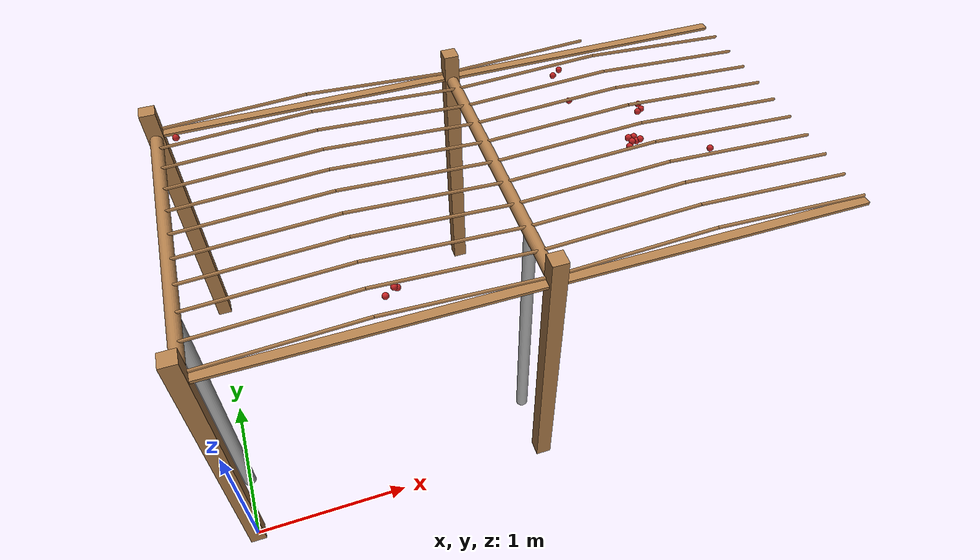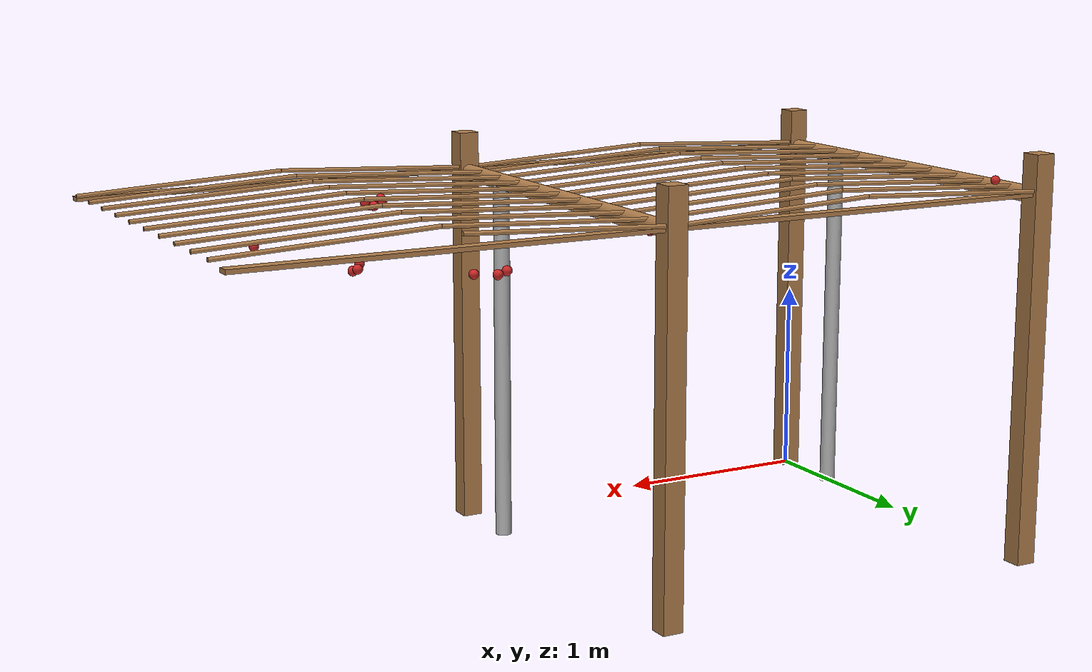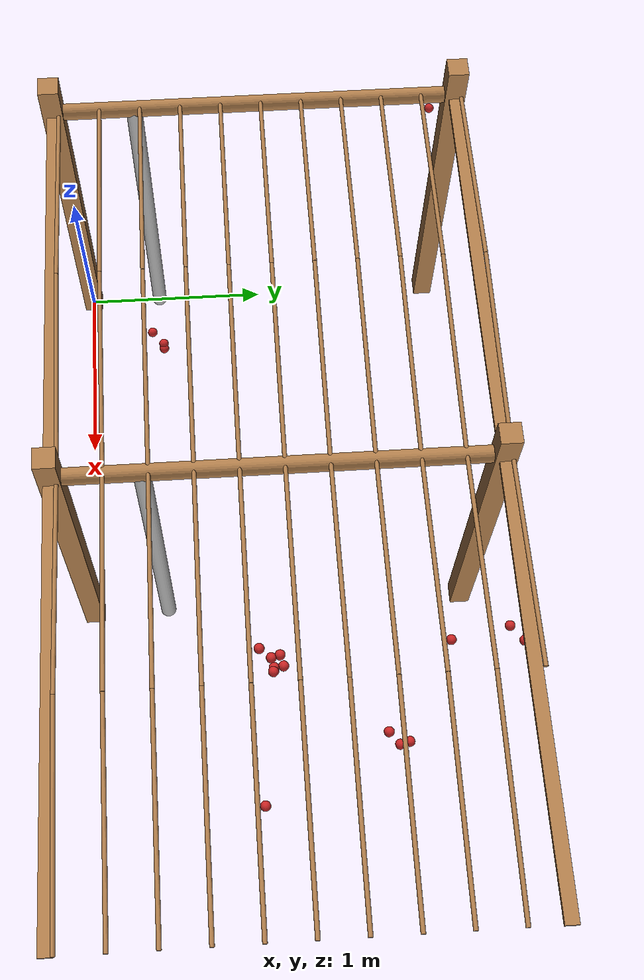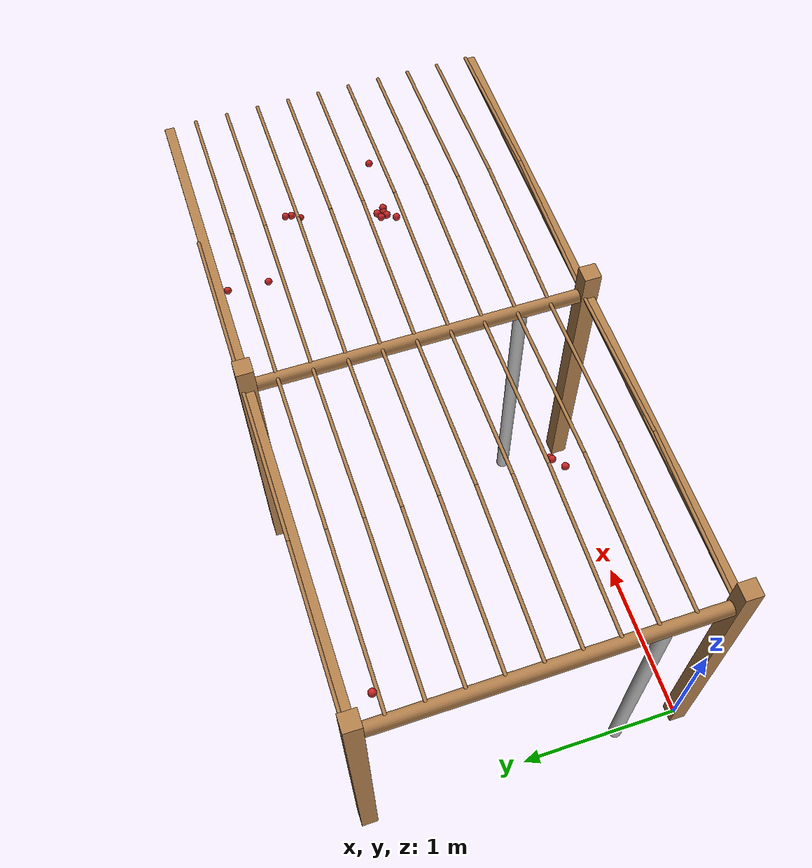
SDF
<sdf version="1.4">
 <model name="pergola">
  <include><name>post_0</name><uri>model://post</uri></include>
  <include><name>post_1</name><pose>0.0 2.0 0 0 0 0</pose><uri>model://post</uri></include>
  <include><name>post_11</name><pose>2.0 0.0 0 0 0 0</pose><uri>model://post</uri></include>
  <include><name>post_12</name><pose>2.0 2.0 0 0 0 0</pose><uri>model://post</uri></include>
  <link name="beam_0">
   <pose>1.0 0.0 1.81 0 0 0</pose>
   <collision name="collision"><geometry><box><size>2.0 0.06 0.02</size></box></geometry></collision>
   <visual name="visual">
    <geometry><box><size>2.0 0.06 0.02</size></box></geometry>
    <material><script><name>Gazebo/Wood</name></script></material>
   </visual>
   <inertial>
    <mass>5</mass>
    <inertia>
     <ixx>0.0016666666666666668</ixx>
     <ixy>0.0</ixy>
     <ixz>0.0</ixz>
     <iyy>1.6681666666666664</iyy>
     <iyz>0.0</iyz>
     <izz>1.6668333333333332</izz>
    </inertia>
   </inertial>
  </link>
  <link name="beam_1">
   <pose>1.0 2.0 1.81 0 0 0</pose>
   <collision name="collision"><geometry><box><size>2.0 0.06 0.02</size></box></geometry></collision>
   <visual name="visual">
    <geometry><box><size>2.0 0.06 0.02</size></box></geometry>
    <material><script><name>Gazebo/Wood</name></script></material>
   </visual>
   <inertial>
    <mass>5</mass>
    <inertia>
     <ixx>0.0016666666666666668</ixx>
     <ixy>0.0</ixy>
     <ixz>0.0</ixz>
     <iyy>1.6681666666666664</iyy>
     <iyz>0.0</iyz>
     <izz>1.6668333333333332</izz>
    </inertia>
   </inertial>
  </link>
  <link name="beam_11">
   <pose>3.0 0.0 1.81 0 0 0</pose>
   <collision name="collision"><geometry><box><size>2.0 0.06 0.02</size></box></geometry></collision>
   <visual name="visual">
    <geometry><box><size>2.0 0.06 0.02</size></box></geometry>
    <material><script><name>Gazebo/Wood</name></script></material>
   </visual>
   <inertial>
    <mass>5</mass>
    <inertia>
     <ixx>0.0016666666666666668</ixx>
     <ixy>0.0</ixy>
     <ixz>0.0</ixz>
     <iyy>1.6681666666666664</iyy>
     <iyz>0.0</iyz>
     <izz>1.6668333333333332</izz>
    </inertia>
   </inertial>
  </link>
  <link name="beam_12">
   <pose>3.0 2.0 1.81 0 0 0</pose>
   <collision name="collision"><geometry><box><size>2.0 0.06 0.02</size></box></geometry></collision>
   <visual name="visual">
    <geometry><box><size>2.0 0.06 0.02</size></box></geometry>
    <material><script><name>Gazebo/Wood</name></script></material>
   </visual>
   <inertial>
    <mass>5</mass>
    <inertia>
     <ixx>0.0016666666666666668</ixx>
     <ixy>0.0</ixy>
     <ixz>0.0</ixz>
     <iyy>1.6681666666666664</iyy>
     <iyz>0.0</iyz>
     <izz>1.6668333333333332</izz>
    </inertia>
   </inertial>
  </link>
  <include><name>tree_0</name><pose>0.0 0.4 0 0 0 0</pose><uri>model://tree_trunk</uri></include>
  <include><name>tree_10</name><pose>2.0 0.4 0 0 0 0</pose><uri>model://tree_trunk</uri></include>
  <link name="baseBranch_0">
   <pose>0.0 1.0 1.8 1.5707963267948966 0 0</pose>
   <collision name="collision">
    <geometry><cylinder><radius>0.04</radius><length>1.94</length></cylinder></geometry>
   </collision>
   <visual name="visual">
    <geometry><cylinder><radius>0.04</radius><length>1.94</length></cylinder></geometry>
    <material><script><name>Gazebo/WoodFloor</name></script></material>
   </visual>
   <inertial>
    <mass>10</mass>
    <inertia>
     <ixx>3.140333333333333</ixx>
     <ixy>0.0</ixy>
     <ixz>0.0</ixz>
     <iyy>3.140333333333333</iyy>
     <iyz>0.0</iyz>
     <izz>0.008</izz>
    </inertia>
   </inertial>
  </link>
  <link name="baseBranch_10">
   <pose>2.0 1.0 1.8 1.5707963267948966 0 0</pose>
   <collision name="collision">
    <geometry><cylinder><radius>0.04</radius><length>1.94</length></cylinder></geometry>
   </collision>
   <visual name="visual">
    <geometry><cylinder><radius>0.04</radius><length>1.94</length></cylinder></geometry>
    <material><script><name>Gazebo/WoodFloor</name></script></material>
   </visual>
   <inertial>
    <mass>10</mass>
    <inertia>
     <ixx>3.140333333333333</ixx>
     <ixy>0.0</ixy>
     <ixz>0.0</ixz>
     <iyy>3.140333333333333</iyy>
     <iyz>0.0</iyz>
     <izz>0.008</izz>
    </inertia>
   </inertial>
  </link>
  <link name="vine_0">
   <pose>0.5 0.03 1.85 0 1.5208379310729538 0</pose>
   <collision name="collision">
    <geometry><cylinder><radius>0.01</radius><length>1.0012492197250393</length></cylinder></geometry>
   </collision>
   <visual name="visual">
    <geometry><cylinder><radius>0.01</radius><length>1.0012492197250393</length></cylinder></geometry>
    <material><script><name>Gazebo/WoodFloor</name></script></material>
   </visual>
   <inertial>
    <mass>5</mass>
    <inertia>
     <ixx>0.41783333333333345</ixx>
     <ixy>0.0</ixy>
     <ixz>0.0</ixz>
     <iyy>0.41783333333333345</iyy>
     <iyz>0.0</iyz>
     <izz>0.00025</izz>
    </inertia>
   </inertial>
  </link>
  <link name="vine_1">
   <pose>1.5 0.03 1.85 0 -1.5208379310729538 0</pose>
   <collision name="collision">
    <geometry><cylinder><radius>0.01</radius><length>1.0012492197250393</length></cylinder></geometry>
   </collision>
   <visual name="visual">
    <geometry><cylinder><radius>0.01</radius><length>1.0012492197250393</length></cylinder></geometry>
    <material><script><name>Gazebo/WoodFloor</name></script></material>
   </visual>
   <inertial>
    <mass>5</mass>
    <inertia>
     <ixx>0.41783333333333345</ixx>
     <ixy>0.0</ixy>
     <ixz>0.0</ixz>
     <iyy>0.41783333333333345</iyy>
     <iyz>0.0</iyz>
     <izz>0.00025</izz>
    </inertia>
   </inertial>
  </link>
  <link name="vine_2">
   <pose>0.5 0.23 1.85 0 1.5208379310729538 0</pose>
   <collision name="collision">
    <geometry><cylinder><radius>0.01</radius><length>1.0012492197250393</length></cylinder></geometry>
   </collision>
   <visual name="visual">
    <geometry><cylinder><radius>0.01</radius><length>1.0012492197250393</length></cylinder></geometry>
    <material><script><name>Gazebo/WoodFloor</name></script></material>
   </visual>
   <inertial>
    <mass>5</mass>
    <inertia>
     <ixx>0.41783333333333345</ixx>
     <ixy>0.0</ixy>
     <ixz>0.0</ixz>
     <iyy>0.41783333333333345</iyy>
     <iyz>0.0</iyz>
     <izz>0.00025</izz>
    </inertia>
   </inertial>
  </link>
  <link name="vine_3">
   <pose>1.5 0.23 1.85 0 -1.5208379310729538 0</pose>
   <collision name="collision">
    <geometry><cylinder><radius>0.01</radius><length>1.0012492197250393</length></cylinder></geometry>
   </collision>
   <visual name="visual">
    <geometry><cylinder><radius>0.01</radius><length>1.0012492197250393</length></cylinder></geometry>
    <material><script><name>Gazebo/WoodFloor</name></script></material>
   </visual>
   <inertial>
    <mass>5</mass>
    <inertia>
     <ixx>0.41783333333333345</ixx>
     <ixy>0.0</ixy>
     <ixz>0.0</ixz>
     <iyy>0.41783333333333345</iyy>
     <iyz>0.0</iyz>
     <izz>0.00025</izz>
    </inertia>
   </inertial>
  </link>
  <link name="vine_4">
   <pose>0.5 0.43000000000000005 1.85 0 1.5208379310729538 0</pose>
   <collision name="collision">
    <geometry><cylinder><radius>0.01</radius><length>1.0012492197250393</length></cylinder></geometry>
   </collision>
   <visual name="visual">
    <geometry><cylinder><radius>0.01</radius><length>1.0012492197250393</length></cylinder></geometry>
    <material><script><name>Gazebo/WoodFloor</name></script></material>
   </visual>
   <inertial>
    <mass>5</mass>
    <inertia>
     <ixx>0.41783333333333345</ixx>
     <ixy>0.0</ixy>
     <ixz>0.0</ixz>
     <iyy>0.41783333333333345</iyy>
     <iyz>0.0</iyz>
     <izz>0.00025</izz>
    </inertia>
   </inertial>
  </link>
  <link name="vine_5">
   <pose>1.5 0.43000000000000005 1.85 0 -1.5208379310729538 0</pose>
   <collision name="collision">
    <geometry><cylinder><radius>0.01</radius><length>1.0012492197250393</length></cylinder></geometry>
   </collision>
   <visual name="visual">
    <geometry><cylinder><radius>0.01</radius><length>1.0012492197250393</length></cylinder></geometry>
    <material><script><name>Gazebo/WoodFloor</name></script></material>
   </visual>
   <inertial>
    <mass>5</mass>
    <inertia>
     <ixx>0.41783333333333345</ixx>
     <ixy>0.0</ixy>
     <ixz>0.0</ixz>
     <iyy>0.41783333333333345</iyy>
     <iyz>0.0</iyz>
     <izz>0.00025</izz>
    </inertia>
   </inertial>
  </link>
  <link name="vine_6">
   <pose>0.5 0.6300000000000001 1.85 0 1.5208379310729538 0</pose>
   <collision name="collision">
    <geometry><cylinder><radius>0.01</radius><length>1.0012492197250393</length></cylinder></geometry>
   </collision>
   <visual name="visual">
    <geometry><cylinder><radius>0.01</radius><length>1.0012492197250393</length></cylinder></geometry>
    <material><script><name>Gazebo/WoodFloor</name></script></material>
   </visual>
   <inertial>
    <mass>5</mass>
    <inertia>
     <ixx>0.41783333333333345</ixx>
     <ixy>0.0</ixy>
     <ixz>0.0</ixz>
     <iyy>0.41783333333333345</iyy>
     <iyz>0.0</iyz>
     <izz>0.00025</izz>
    </inertia>
   </inertial>
  </link>
  <link name="vine_7">
   <pose>1.5 0.6300000000000001 1.85 0 -1.5208379310729538 0</pose>
   <collision name="collision">
    <geometry><cylinder><radius>0.01</radius><length>1.0012492197250393</length></cylinder></geometry>
   </collision>
   <visual name="visual">
    <geometry><cylinder><radius>0.01</radius><length>1.0012492197250393</length></cylinder></geometry>
    <material><script><name>Gazebo/WoodFloor</name></script></material>
   </visual>
   <inertial>
    <mass>5</mass>
    <inertia>
     <ixx>0.41783333333333345</ixx>
     <ixy>0.0</ixy>
     <ixz>0.0</ixz>
     <iyy>0.41783333333333345</iyy>
     <iyz>0.0</iyz>
     <izz>0.00025</izz>
    </inertia>
   </inertial>
  </link>
  <link name="vine_8">
   <pose>0.5 0.8300000000000001 1.85 0 1.5208379310729538 0</pose>
   <collision name="collision">
    <geometry><cylinder><radius>0.01</radius><length>1.0012492197250393</length></cylinder></geometry>
   </collision>
   <visual name="visual">
    <geometry><cylinder><radius>0.01</radius><length>1.0012492197250393</length></cylinder></geometry>
    <material><script><name>Gazebo/WoodFloor</name></script></material>
   </visual>
   <inertial>
    <mass>5</mass>
    <inertia>
     <ixx>0.41783333333333345</ixx>
     <ixy>0.0</ixy>
     <ixz>0.0</ixz>
     <iyy>0.41783333333333345</iyy>
     <iyz>0.0</iyz>
     <izz>0.00025</izz>
    </inertia>
   </inertial>
  </link>
  <link name="vine_9">
   <pose>1.5 0.8300000000000001 1.85 0 -1.5208379310729538 0</pose>
   <collision name="collision">
    <geometry><cylinder><radius>0.01</radius><length>1.0012492197250393</length></cylinder></geometry>
   </collision>
   <visual name="visual">
    <geometry><cylinder><radius>0.01</radius><length>1.0012492197250393</length></cylinder></geometry>
    <material><script><name>Gazebo/WoodFloor</name></script></material>
   </visual>
   <inertial>
    <mass>5</mass>
    <inertia>
     <ixx>0.41783333333333345</ixx>
     <ixy>0.0</ixy>
     <ixz>0.0</ixz>
     <iyy>0.41783333333333345</iyy>
     <iyz>0.0</iyz>
     <izz>0.00025</izz>
    </inertia>
   </inertial>
  </link>
  <link name="vine_10">
   <pose>0.5 1.03 1.85 0 1.5208379310729538 0</pose>
   <collision name="collision">
    <geometry><cylinder><radius>0.01</radius><length>1.0012492197250393</length></cylinder></geometry>
   </collision>
   <visual name="visual">
    <geometry><cylinder><radius>0.01</radius><length>1.0012492197250393</length></cylinder></geometry>
    <material><script><name>Gazebo/WoodFloor</name></script></material>
   </visual>
   <inertial>
    <mass>5</mass>
    <inertia>
     <ixx>0.41783333333333345</ixx>
     <ixy>0.0</ixy>
     <ixz>0.0</ixz>
     <iyy>0.41783333333333345</iyy>
     <iyz>0.0</iyz>
     <izz>0.00025</izz>
    </inertia>
   </inertial>
  </link>
  <link name="vine_11">
   <pose>1.5 1.03 1.85 0 -1.5208379310729538 0</pose>
   <collision name="collision">
    <geometry><cylinder><radius>0.01</radius><length>1.0012492197250393</length></cylinder></geometry>
   </collision>
   <visual name="visual">
    <geometry><cylinder><radius>0.01</radius><length>1.0012492197250393</length></cylinder></geometry>
    <material><script><name>Gazebo/WoodFloor</name></script></material>
   </visual>
   <inertial>
    <mass>5</mass>
    <inertia>
     <ixx>0.41783333333333345</ixx>
     <ixy>0.0</ixy>
     <ixz>0.0</ixz>
     <iyy>0.41783333333333345</iyy>
     <iyz>0.0</iyz>
     <izz>0.00025</izz>
    </inertia>
   </inertial>
  </link>
  <link name="vine_12">
   <pose>0.5 1.2300000000000002 1.85 0 1.5208379310729538 0</pose>
   <collision name="collision">
    <geometry><cylinder><radius>0.01</radius><length>1.0012492197250393</length></cylinder></geometry>
   </collision>
   <visual name="visual">
    <geometry><cylinder><radius>0.01</radius><length>1.0012492197250393</length></cylinder></geometry>
    <material><script><name>Gazebo/WoodFloor</name></script></material>
   </visual>
   <inertial>
    <mass>5</mass>
    <inertia>
     <ixx>0.41783333333333345</ixx>
     <ixy>0.0</ixy>
     <ixz>0.0</ixz>
     <iyy>0.41783333333333345</iyy>
     <iyz>0.0</iyz>
     <izz>0.00025</izz>
    </inertia>
   </inertial>
  </link>
  <link name="vine_13">
   <pose>1.5 1.2300000000000002 1.85 0 -1.5208379310729538 0</pose>
   <collision name="collision">
    <geometry><cylinder><radius>0.01</radius><length>1.0012492197250393</length></cylinder></geometry>
   </collision>
   <visual name="visual">
    <geometry><cylinder><radius>0.01</radius><length>1.0012492197250393</length></cylinder></geometry>
    <material><script><name>Gazebo/WoodFloor</name></script></material>
   </visual>
   <inertial>
    <mass>5</mass>
    <inertia>
     <ixx>0.41783333333333345</ixx>
     <ixy>0.0</ixy>
     <ixz>0.0</ixz>
     <iyy>0.41783333333333345</iyy>
     <iyz>0.0</iyz>
     <izz>0.00025</izz>
    </inertia>
   </inertial>
  </link>
  <link name="vine_14">
   <pose>0.5 1.4300000000000002 1.85 0 1.5208379310729538 0</pose>
   <collision name="collision">
    <geometry><cylinder><radius>0.01</radius><length>1.0012492197250393</length></cylinder></geometry>
   </collision>
   <visual name="visual">
    <geometry><cylinder><radius>0.01</radius><length>1.0012492197250393</length></cylinder></geometry>
    <material><script><name>Gazebo/WoodFloor</name></script></material>
   </visual>
   <inertial>
    <mass>5</mass>
    <inertia>
     <ixx>0.41783333333333345</ixx>
     <ixy>0.0</ixy>
     <ixz>0.0</ixz>
     <iyy>0.41783333333333345</iyy>
     <iyz>0.0</iyz>
     <izz>0.00025</izz>
    </inertia>
   </inertial>
  </link>
  <link name="vine_15">
   <pose>1.5 1.4300000000000002 1.85 0 -1.5208379310729538 0</pose>
   <collision name="collision">
    <geometry><cylinder><radius>0.01</radius><length>1.0012492197250393</length></cylinder></geometry>
   </collision>
   <visual name="visual">
    <geometry><cylinder><radius>0.01</radius><length>1.0012492197250393</length></cylinder></geometry>
    <material><script><name>Gazebo/WoodFloor</name></script></material>
   </visual>
   <inertial>
    <mass>5</mass>
    <inertia>
     <ixx>0.41783333333333345</ixx>
     <ixy>0.0</ixy>
     <ixz>0.0</ixz>
     <iyy>0.41783333333333345</iyy>
     <iyz>0.0</iyz>
     <izz>0.00025</izz>
    </inertia>
   </inertial>
  </link>
  <link name="vine_16">
   <pose>0.5 1.6300000000000001 1.85 0 1.5208379310729538 0</pose>
   <collision name="collision">
    <geometry><cylinder><radius>0.01</radius><length>1.0012492197250393</length></cylinder></geometry>
   </collision>
   <visual name="visual">
    <geometry><cylinder><radius>0.01</radius><length>1.0012492197250393</length></cylinder></geometry>
    <material><script><name>Gazebo/WoodFloor</name></script></material>
   </visual>
   <inertial>
    <mass>5</mass>
    <inertia>
     <ixx>0.41783333333333345</ixx>
     <ixy>0.0</ixy>
     <ixz>0.0</ixz>
     <iyy>0.41783333333333345</iyy>
     <iyz>0.0</iyz>
     <izz>0.00025</izz>
    </inertia>
   </inertial>
  </link>
  <link name="vine_17">
   <pose>1.5 1.6300000000000001 1.85 0 -1.5208379310729538 0</pose>
   <collision name="collision">
    <geometry><cylinder><radius>0.01</radius><length>1.0012492197250393</length></cylinder></geometry>
   </collision>
   <visual name="visual">
    <geometry><cylinder><radius>0.01</radius><length>1.0012492197250393</length></cylinder></geometry>
    <material><script><name>Gazebo/WoodFloor</name></script></material>
   </visual>
   <inertial>
    <mass>5</mass>
    <inertia>
     <ixx>0.41783333333333345</ixx>
     <ixy>0.0</ixy>
     <ixz>0.0</ixz>
     <iyy>0.41783333333333345</iyy>
     <iyz>0.0</iyz>
     <izz>0.00025</izz>
    </inertia>
   </inertial>
  </link>
  <link name="vine_18">
   <pose>0.5 1.83 1.85 0 1.5208379310729538 0</pose>
   <collision name="collision">
    <geometry><cylinder><radius>0.01</radius><length>1.0012492197250393</length></cylinder></geometry>
   </collision>
   <visual name="visual">
    <geometry><cylinder><radius>0.01</radius><length>1.0012492197250393</length></cylinder></geometry>
    <material><script><name>Gazebo/WoodFloor</name></script></material>
   </visual>
   <inertial>
    <mass>5</mass>
    <inertia>
     <ixx>0.41783333333333345</ixx>
     <ixy>0.0</ixy>
     <ixz>0.0</ixz>
     <iyy>0.41783333333333345</iyy>
     <iyz>0.0</iyz>
     <izz>0.00025</izz>
    </inertia>
   </inertial>
  </link>
  <link name="vine_19">
   <pose>1.5 1.83 1.85 0 -1.5208379310729538 0</pose>
   <collision name="collision">
    <geometry><cylinder><radius>0.01</radius><length>1.0012492197250393</length></cylinder></geometry>
   </collision>
   <visual name="visual">
    <geometry><cylinder><radius>0.01</radius><length>1.0012492197250393</length></cylinder></geometry>
    <material><script><name>Gazebo/WoodFloor</name></script></material>
   </visual>
   <inertial>
    <mass>5</mass>
    <inertia>
     <ixx>0.41783333333333345</ixx>
     <ixy>0.0</ixy>
     <ixz>0.0</ixz>
     <iyy>0.41783333333333345</iyy>
     <iyz>0.0</iyz>
     <izz>0.00025</izz>
    </inertia>
   </inertial>
  </link>
  <link name="vine_20">
   <pose>0.5 2.03 1.85 0 1.5208379310729538 0</pose>
   <collision name="collision">
    <geometry><cylinder><radius>0.01</radius><length>1.0012492197250393</length></cylinder></geometry>
   </collision>
   <visual name="visual">
    <geometry><cylinder><radius>0.01</radius><length>1.0012492197250393</length></cylinder></geometry>
    <material><script><name>Gazebo/WoodFloor</name></script></material>
   </visual>
   <inertial>
    <mass>5</mass>
    <inertia>
     <ixx>0.41783333333333345</ixx>
     <ixy>0.0</ixy>
     <ixz>0.0</ixz>
     <iyy>0.41783333333333345</iyy>
     <iyz>0.0</iyz>
     <izz>0.00025</izz>
    </inertia>
   </inertial>
  </link>
  <link name="vine_21">
   <pose>1.5 2.03 1.85 0 -1.5208379310729538 0</pose>
   <collision name="collision">
    <geometry><cylinder><radius>0.01</radius><length>1.0012492197250393</length></cylinder></geometry>
   </collision>
   <visual name="visual">
    <geometry><cylinder><radius>0.01</radius><length>1.0012492197250393</length></cylinder></geometry>
    <material><script><name>Gazebo/WoodFloor</name></script></material>
   </visual>
   <inertial>
    <mass>5</mass>
    <inertia>
     <ixx>0.41783333333333345</ixx>
     <ixy>0.0</ixy>
     <ixz>0.0</ixz>
     <iyy>0.41783333333333345</iyy>
     <iyz>0.0</iyz>
     <izz>0.00025</izz>
    </inertia>
   </inertial>
  </link>
  <link name="vine_200">
   <pose>2.5 0.03 1.85 0 1.5208379310729538 0</pose>
   <collision name="collision">
    <geometry><cylinder><radius>0.01</radius><length>1.0012492197250393</length></cylinder></geometry>
   </collision>
   <visual name="visual">
    <geometry><cylinder><radius>0.01</radius><length>1.0012492197250393</length></cylinder></geometry>
    <material><script><name>Gazebo/WoodFloor</name></script></material>
   </visual>
   <inertial>
    <mass>5</mass>
    <inertia>
     <ixx>0.41783333333333345</ixx>
     <ixy>0.0</ixy>
     <ixz>0.0</ixz>
     <iyy>0.41783333333333345</iyy>
     <iyz>0.0</iyz>
     <izz>0.00025</izz>
    </inertia>
   </inertial>
  </link>
  <link name="vine_201">
   <pose>3.5 0.03 1.85 0 -1.5208379310729538 0</pose>
   <collision name="collision">
    <geometry><cylinder><radius>0.01</radius><length>1.0012492197250393</length></cylinder></geometry>
   </collision>
   <visual name="visual">
    <geometry><cylinder><radius>0.01</radius><length>1.0012492197250393</length></cylinder></geometry>
    <material><script><name>Gazebo/WoodFloor</name></script></material>
   </visual>
   <inertial>
    <mass>5</mass>
    <inertia>
     <ixx>0.41783333333333345</ixx>
     <ixy>0.0</ixy>
     <ixz>0.0</ixz>
     <iyy>0.41783333333333345</iyy>
     <iyz>0.0</iyz>
     <izz>0.00025</izz>
    </inertia>
   </inertial>
  </link>
  <link name="vine_202">
   <pose>2.5 0.23 1.85 0 1.5208379310729538 0</pose>
   <collision name="collision">
    <geometry><cylinder><radius>0.01</radius><length>1.0012492197250393</length></cylinder></geometry>
   </collision>
   <visual name="visual">
    <geometry><cylinder><radius>0.01</radius><length>1.0012492197250393</length></cylinder></geometry>
    <material><script><name>Gazebo/WoodFloor</name></script></material>
   </visual>
   <inertial>
    <mass>5</mass>
    <inertia>
     <ixx>0.41783333333333345</ixx>
     <ixy>0.0</ixy>
     <ixz>0.0</ixz>
     <iyy>0.41783333333333345</iyy>
     <iyz>0.0</iyz>
     <izz>0.00025</izz>
    </inertia>
   </inertial>
  </link>
  <link name="vine_203">
   <pose>3.5 0.23 1.85 0 -1.5208379310729538 0</pose>
   <collision name="collision">
    <geometry><cylinder><radius>0.01</radius><length>1.0012492197250393</length></cylinder></geometry>
   </collision>
   <visual name="visual">
    <geometry><cylinder><radius>0.01</radius><length>1.0012492197250393</length></cylinder></geometry>
    <material><script><name>Gazebo/WoodFloor</name></script></material>
   </visual>
   <inertial>
    <mass>5</mass>
    <inertia>
     <ixx>0.41783333333333345</ixx>
     <ixy>0.0</ixy>
     <ixz>0.0</ixz>
     <iyy>0.41783333333333345</iyy>
     <iyz>0.0</iyz>
     <izz>0.00025</izz>
    </inertia>
   </inertial>
  </link>
  <link name="vine_204">
   <pose>2.5 0.43000000000000005 1.85 0 1.5208379310729538 0</pose>
   <collision name="collision">
    <geometry><cylinder><radius>0.01</radius><length>1.0012492197250393</length></cylinder></geometry>
   </collision>
   <visual name="visual">
    <geometry><cylinder><radius>0.01</radius><length>1.0012492197250393</length></cylinder></geometry>
    <material><script><name>Gazebo/WoodFloor</name></script></material>
   </visual>
   <inertial>
    <mass>5</mass>
    <inertia>
     <ixx>0.41783333333333345</ixx>
     <ixy>0.0</ixy>
     <ixz>0.0</ixz>
     <iyy>0.41783333333333345</iyy>
     <iyz>0.0</iyz>
     <izz>0.00025</izz>
    </inertia>
   </inertial>
  </link>
  <link name="vine_205">
   <pose>3.5 0.43000000000000005 1.85 0 -1.5208379310729538 0</pose>
   <collision name="collision">
    <geometry><cylinder><radius>0.01</radius><length>1.0012492197250393</length></cylinder></geometry>
   </collision>
   <visual name="visual">
    <geometry><cylinder><radius>0.01</radius><length>1.0012492197250393</length></cylinder></geometry>
    <material><script><name>Gazebo/WoodFloor</name></script></material>
   </visual>
   <inertial>
    <mass>5</mass>
    <inertia>
     <ixx>0.41783333333333345</ixx>
     <ixy>0.0</ixy>
     <ixz>0.0</ixz>
     <iyy>0.41783333333333345</iyy>
     <iyz>0.0</iyz>
     <izz>0.00025</izz>
    </inertia>
   </inertial>
  </link>
  <link name="vine_206">
   <pose>2.5 0.6300000000000001 1.85 0 1.5208379310729538 0</pose>
   <collision name="collision">
    <geometry><cylinder><radius>0.01</radius><length>1.0012492197250393</length></cylinder></geometry>
   </collision>
   <visual name="visual">
    <geometry><cylinder><radius>0.01</radius><length>1.0012492197250393</length></cylinder></geometry>
    <material><script><name>Gazebo/WoodFloor</name></script></material>
   </visual>
   <inertial>
    <mass>5</mass>
    <inertia>
     <ixx>0.41783333333333345</ixx>
     <ixy>0.0</ixy>
     <ixz>0.0</ixz>
     <iyy>0.41783333333333345</iyy>
     <iyz>0.0</iyz>
     <izz>0.00025</izz>
    </inertia>
   </inertial>
  </link>
  <link name="vine_207">
   <pose>3.5 0.6300000000000001 1.85 0 -1.5208379310729538 0</pose>
   <collision name="collision">
    <geometry><cylinder><radius>0.01</radius><length>1.0012492197250393</length></cylinder></geometry>
   </collision>
   <visual name="visual">
    <geometry><cylinder><radius>0.01</radius><length>1.0012492197250393</length></cylinder></geometry>
    <material><script><name>Gazebo/WoodFloor</name></script></material>
   </visual>
   <inertial>
    <mass>5</mass>
    <inertia>
     <ixx>0.41783333333333345</ixx>
     <ixy>0.0</ixy>
     <ixz>0.0</ixz>
     <iyy>0.41783333333333345</iyy>
     <iyz>0.0</iyz>
     <izz>0.00025</izz>
    </inertia>
   </inertial>
  </link>
  <link name="vine_208">
   <pose>2.5 0.8300000000000001 1.85 0 1.5208379310729538 0</pose>
   <collision name="collision">
    <geometry><cylinder><radius>0.01</radius><length>1.0012492197250393</length></cylinder></geometry>
   </collision>
   <visual name="visual">
    <geometry><cylinder><radius>0.01</radius><length>1.0012492197250393</length></cylinder></geometry>
    <material><script><name>Gazebo/WoodFloor</name></script></material>
   </visual>
   <inertial>
    <mass>5</mass>
    <inertia>
     <ixx>0.41783333333333345</ixx>
     <ixy>0.0</ixy>
     <ixz>0.0</ixz>
     <iyy>0.41783333333333345</iyy>
     <iyz>0.0</iyz>
     <izz>0.00025</izz>
    </inertia>
   </inertial>
  </link>
  <link name="vine_209">
   <pose>3.5 0.8300000000000001 1.85 0 -1.5208379310729538 0</pose>
   <collision name="collision">
    <geometry><cylinder><radius>0.01</radius><length>1.0012492197250393</length></cylinder></geometry>
   </collision>
   <visual name="visual">
    <geometry><cylinder><radius>0.01</radius><length>1.0012492197250393</length></cylinder></geometry>
    <material><script><name>Gazebo/WoodFloor</name></script></material>
   </visual>
   <inertial>
    <mass>5</mass>
    <inertia>
     <ixx>0.41783333333333345</ixx>
     <ixy>0.0</ixy>
     <ixz>0.0</ixz>
     <iyy>0.41783333333333345</iyy>
     <iyz>0.0</iyz>
     <izz>0.00025</izz>
    </inertia>
   </inertial>
  </link>
  <link name="vine_210">
   <pose>2.5 1.03 1.85 0 1.5208379310729538 0</pose>
   <collision name="collision">
    <geometry><cylinder><radius>0.01</radius><length>1.0012492197250393</length></cylinder></geometry>
   </collision>
   <visual name="visual">
    <geometry><cylinder><radius>0.01</radius><length>1.0012492197250393</length></cylinder></geometry>
    <material><script><name>Gazebo/WoodFloor</name></script></material>
   </visual>
   <inertial>
    <mass>5</mass>
    <inertia>
     <ixx>0.41783333333333345</ixx>
     <ixy>0.0</ixy>
     <ixz>0.0</ixz>
     <iyy>0.41783333333333345</iyy>
     <iyz>0.0</iyz>
     <izz>0.00025</izz>
    </inertia>
   </inertial>
  </link>
  <link name="vine_211">
   <pose>3.5 1.03 1.85 0 -1.5208379310729538 0</pose>
   <collision name="collision">
    <geometry><cylinder><radius>0.01</radius><length>1.0012492197250393</length></cylinder></geometry>
   </collision>
   <visual name="visual">
    <geometry><cylinder><radius>0.01</radius><length>1.0012492197250393</length></cylinder></geometry>
    <material><script><name>Gazebo/WoodFloor</name></script></material>
   </visual>
   <inertial>
    <mass>5</mass>
    <inertia>
     <ixx>0.41783333333333345</ixx>
     <ixy>0.0</ixy>
     <ixz>0.0</ixz>
     <iyy>0.41783333333333345</iyy>
     <iyz>0.0</iyz>
     <izz>0.00025</izz>
    </inertia>
   </inertial>
  </link>
  <link name="vine_212">
   <pose>2.5 1.2300000000000002 1.85 0 1.5208379310729538 0</pose>
   <collision name="collision">
    <geometry><cylinder><radius>0.01</radius><length>1.0012492197250393</length></cylinder></geometry>
   </collision>
   <visual name="visual">
    <geometry><cylinder><radius>0.01</radius><length>1.0012492197250393</length></cylinder></geometry>
    <material><script><name>Gazebo/WoodFloor</name></script></material>
   </visual>
   <inertial>
    <mass>5</mass>
    <inertia>
     <ixx>0.41783333333333345</ixx>
     <ixy>0.0</ixy>
     <ixz>0.0</ixz>
     <iyy>0.41783333333333345</iyy>
     <iyz>0.0</iyz>
     <izz>0.00025</izz>
    </inertia>
   </inertial>
  </link>
  <link name="vine_213">
   <pose>3.5 1.2300000000000002 1.85 0 -1.5208379310729538 0</pose>
   <collision name="collision">
    <geometry><cylinder><radius>0.01</radius><length>1.0012492197250393</length></cylinder></geometry>
   </collision>
   <visual name="visual">
    <geometry><cylinder><radius>0.01</radius><length>1.0012492197250393</length></cylinder></geometry>
    <material><script><name>Gazebo/WoodFloor</name></script></material>
   </visual>
   <inertial>
    <mass>5</mass>
    <inertia>
     <ixx>0.41783333333333345</ixx>
     <ixy>0.0</ixy>
     <ixz>0.0</ixz>
     <iyy>0.41783333333333345</iyy>
     <iyz>0.0</iyz>
     <izz>0.00025</izz>
    </inertia>
   </inertial>
  </link>
  <link name="vine_214">
   <pose>2.5 1.4300000000000002 1.85 0 1.5208379310729538 0</pose>
   <collision name="collision">
    <geometry><cylinder><radius>0.01</radius><length>1.0012492197250393</length></cylinder></geometry>
   </collision>
   <visual name="visual">
    <geometry><cylinder><radius>0.01</radius><length>1.0012492197250393</length></cylinder></geometry>
    <material><script><name>Gazebo/WoodFloor</name></script></material>
   </visual>
   <inertial>
    <mass>5</mass>
    <inertia>
     <ixx>0.41783333333333345</ixx>
     <ixy>0.0</ixy>
     <ixz>0.0</ixz>
     <iyy>0.41783333333333345</iyy>
     <iyz>0.0</iyz>
     <izz>0.00025</izz>
    </inertia>
   </inertial>
  </link>
  <link name="vine_215">
   <pose>3.5 1.4300000000000002 1.85 0 -1.5208379310729538 0</pose>
   <collision name="collision">
    <geometry><cylinder><radius>0.01</radius><length>1.0012492197250393</length></cylinder></geometry>
   </collision>
   <visual name="visual">
    <geometry><cylinder><radius>0.01</radius><length>1.0012492197250393</length></cylinder></geometry>
    <material><script><name>Gazebo/WoodFloor</name></script></material>
   </visual>
   <inertial>
    <mass>5</mass>
    <inertia>
     <ixx>0.41783333333333345</ixx>
     <ixy>0.0</ixy>
     <ixz>0.0</ixz>
     <iyy>0.41783333333333345</iyy>
     <iyz>0.0</iyz>
     <izz>0.00025</izz>
    </inertia>
   </inertial>
  </link>
  <link name="vine_216">
   <pose>2.5 1.6300000000000001 1.85 0 1.5208379310729538 0</pose>
   <collision name="collision">
    <geometry><cylinder><radius>0.01</radius><length>1.0012492197250393</length></cylinder></geometry>
   </collision>
   <visual name="visual">
    <geometry><cylinder><radius>0.01</radius><length>1.0012492197250393</length></cylinder></geometry>
    <material><script><name>Gazebo/WoodFloor</name></script></material>
   </visual>
   <inertial>
    <mass>5</mass>
    <inertia>
     <ixx>0.41783333333333345</ixx>
     <ixy>0.0</ixy>
     <ixz>0.0</ixz>
     <iyy>0.41783333333333345</iyy>
     <iyz>0.0</iyz>
     <izz>0.00025</izz>
    </inertia>
   </inertial>
  </link>
  <link name="vine_217">
   <pose>3.5 1.6300000000000001 1.85 0 -1.5208379310729538 0</pose>
   <collision name="collision">
    <geometry><cylinder><radius>0.01</radius><length>1.0012492197250393</length></cylinder></geometry>
   </collision>
   <visual name="visual">
    <geometry><cylinder><radius>0.01</radius><length>1.0012492197250393</length></cylinder></geometry>
    <material><script><name>Gazebo/WoodFloor</name></script></material>
   </visual>
   <inertial>
    <mass>5</mass>
    <inertia>
     <ixx>0.41783333333333345</ixx>
     <ixy>0.0</ixy>
     <ixz>0.0</ixz>
     <iyy>0.41783333333333345</iyy>
     <iyz>0.0</iyz>
     <izz>0.00025</izz>
    </inertia>
   </inertial>
  </link>
  <link name="vine_218">
   <pose>2.5 1.83 1.85 0 1.5208379310729538 0</pose>
   <collision name="collision">
    <geometry><cylinder><radius>0.01</radius><length>1.0012492197250393</length></cylinder></geometry>
   </collision>
   <visual name="visual">
    <geometry><cylinder><radius>0.01</radius><length>1.0012492197250393</length></cylinder></geometry>
    <material><script><name>Gazebo/WoodFloor</name></script></material>
   </visual>
   <inertial>
    <mass>5</mass>
    <inertia>
     <ixx>0.41783333333333345</ixx>
     <ixy>0.0</ixy>
     <ixz>0.0</ixz>
     <iyy>0.41783333333333345</iyy>
     <iyz>0.0</iyz>
     <izz>0.00025</izz>
    </inertia>
   </inertial>
  </link>
  <link name="vine_219">
   <pose>3.5 1.83 1.85 0 -1.5208379310729538 0</pose>
   <collision name="collision">
    <geometry><cylinder><radius>0.01</radius><length>1.0012492197250393</length></cylinder></geometry>
   </collision>
   <visual name="visual">
    <geometry><cylinder><radius>0.01</radius><length>1.0012492197250393</length></cylinder></geometry>
    <material><script><name>Gazebo/WoodFloor</name></script></material>
   </visual>
   <inertial>
    <mass>5</mass>
    <inertia>
     <ixx>0.41783333333333345</ixx>
     <ixy>0.0</ixy>
     <ixz>0.0</ixz>
     <iyy>0.41783333333333345</iyy>
     <iyz>0.0</iyz>
     <izz>0.00025</izz>
    </inertia>
   </inertial>
  </link>
  <link name="vine_220">
   <pose>2.5 2.03 1.85 0 1.5208379310729538 0</pose>
   <collision name="collision">
    <geometry><cylinder><radius>0.01</radius><length>1.0012492197250393</length></cylinder></geometry>
   </collision>
   <visual name="visual">
    <geometry><cylinder><radius>0.01</radius><length>1.0012492197250393</length></cylinder></geometry>
    <material><script><name>Gazebo/WoodFloor</name></script></material>
   </visual>
   <inertial>
    <mass>5</mass>
    <inertia>
     <ixx>0.41783333333333345</ixx>
     <ixy>0.0</ixy>
     <ixz>0.0</ixz>
     <iyy>0.41783333333333345</iyy>
     <iyz>0.0</iyz>
     <izz>0.00025</izz>
    </inertia>
   </inertial>
  </link>
  <link name="fruit_95">
   <pose>3.4538711013476933 0.8624114916064592 1.6759548496025483 0 0 0</pose>
   <collision name="fruit_collision_95"><geometry><sphere><radius>0.022</radius></sphere></geometry></collision>
   <visual name="visual">
    <geometry><sphere><radius>0.022</radius></sphere></geometry>
    <material><script><name>Gazebo/Red</name></script></material>
   </visual>
   <inertial>
    <mass>0.05</mass>
    <inertia>
     <ixx>9.679999999999999e-06</ixx>
     <ixy>0.0</ixy>
     <ixz>0.0</ixz>
     <iyy>9.679999999999999e-06</iyy>
     <iyz>0.0</iyz>
     <izz>9.679999999999999e-06</izz>
    </inertia>
   </inertial>
   <sensor name="fruit_contact_95" type="contact">
    <contact><collision>fruit_collision_95</collision></contact>
   </sensor>
  </link>
  <link name="fruit_188">
   <pose>3.1766472899753375 1.3892188246553587 1.6622347603201648 0 0 0</pose>
   <collision name="fruit_collision_188"><geometry><sphere><radius>0.022</radius></sphere></geometry></collision>
   <visual name="visual">
    <geometry><sphere><radius>0.022</radius></sphere></geometry>
    <material><script><name>Gazebo/Red</name></script></material>
   </visual>
   <inertial>
    <mass>0.05</mass>
    <inertia>
     <ixx>9.679999999999999e-06</ixx>
     <ixy>0.0</ixy>
     <ixz>0.0</ixz>
     <iyy>9.679999999999999e-06</iyy>
     <iyz>0.0</iyz>
     <izz>9.679999999999999e-06</izz>
    </inertia>
   </inertial>
   <sensor name="fruit_contact_188" type="contact">
    <contact><collision>fruit_collision_188</collision></contact>
   </sensor>
  </link>
  <link name="fruit_198">
   <pose>0.13336511296361891 1.8566468536659828 1.8633573989300174 0 0 0</pose>
   <collision name="fruit_collision_198"><geometry><sphere><radius>0.022</radius></sphere></geometry></collision>
   <visual name="visual">
    <geometry><sphere><radius>0.022</radius></sphere></geometry>
    <material><script><name>Gazebo/Red</name></script></material>
   </visual>
   <inertial>
    <mass>0.05</mass>
    <inertia>
     <ixx>9.679999999999999e-06</ixx>
     <ixy>0.0</ixy>
     <ixz>0.0</ixz>
     <iyy>9.679999999999999e-06</iyy>
     <iyz>0.0</iyz>
     <izz>9.679999999999999e-06</izz>
    </inertia>
   </inertial>
   <sensor name="fruit_contact_198" type="contact">
    <contact><collision>fruit_collision_198</collision></contact>
   </sensor>
  </link>
  <link name="fruit_244">
   <pose>2.757244882304421 1.9427264813925273 1.6865336830378934 0 0 0</pose>
   <collision name="fruit_collision_244"><geometry><sphere><radius>0.022</radius></sphere></geometry></collision>
   <visual name="visual">
    <geometry><sphere><radius>0.022</radius></sphere></geometry>
    <material><script><name>Gazebo/Red</name></script></material>
   </visual>
   <inertial>
    <mass>0.05</mass>
    <inertia>
     <ixx>9.679999999999999e-06</ixx>
     <ixy>0.0</ixy>
     <ixz>0.0</ixz>
     <iyy>9.679999999999999e-06</iyy>
     <iyz>0.0</iyz>
     <izz>9.679999999999999e-06</izz>
    </inertia>
   </inertial>
   <sensor name="fruit_contact_244" type="contact">
    <contact><collision>fruit_collision_244</collision></contact>
   </sensor>
  </link>
  <link name="fruit_266">
   <pose>2.787316718753919 1.6943922711665174 1.6323273086760501 0 0 0</pose>
   <collision name="fruit_collision_266"><geometry><sphere><radius>0.022</radius></sphere></geometry></collision>
   <visual name="visual">
    <geometry><sphere><radius>0.022</radius></sphere></geometry>
    <material><script><name>Gazebo/Red</name></script></material>
   </visual>
   <inertial>
    <mass>0.05</mass>
    <inertia>
     <ixx>9.679999999999999e-06</ixx>
     <ixy>0.0</ixy>
     <ixz>0.0</ixz>
     <iyy>9.679999999999999e-06</iyy>
     <iyz>0.0</iyz>
     <izz>9.679999999999999e-06</izz>
    </inertia>
   </inertial>
   <sensor name="fruit_contact_266" type="contact">
    <contact><collision>fruit_collision_266</collision></contact>
   </sensor>
  </link>
  <link name="fruit_312">
   <pose>1.1247494282803214 0.44676708837728457 1.5140697941555297 0 0 0</pose>
   <collision name="fruit_collision_312"><geometry><sphere><radius>0.022</radius></sphere></geometry></collision>
   <visual name="visual">
    <geometry><sphere><radius>0.022</radius></sphere></geometry>
    <material><script><name>Gazebo/Red</name></script></material>
   </visual>
   <inertial>
    <mass>0.05</mass>
    <inertia>
     <ixx>9.679999999999999e-06</ixx>
     <ixy>0.0</ixy>
     <ixz>0.0</ixz>
     <iyy>9.679999999999999e-06</iyy>
     <iyz>0.0</iyz>
     <izz>9.679999999999999e-06</izz>
    </inertia>
   </inertial>
   <sensor name="fruit_contact_312" type="contact">
    <contact><collision>fruit_collision_312</collision></contact>
   </sensor>
  </link>
  <link name="fruit_344">
   <pose>2.846815140145496 0.8706841496521405 1.8460520165850762 0 0 0</pose>
   <collision name="fruit_collision_344"><geometry><sphere><radius>0.022</radius></sphere></geometry></collision>
   <visual name="visual">
    <geometry><sphere><radius>0.022</radius></sphere></geometry>
    <material><script><name>Gazebo/Red</name></script></material>
   </visual>
   <inertial>
    <mass>0.05</mass>
    <inertia>
     <ixx>9.679999999999999e-06</ixx>
     <ixy>0.0</ixy>
     <ixz>0.0</ixz>
     <iyy>9.679999999999999e-06</iyy>
     <iyz>0.0</iyz>
     <izz>9.679999999999999e-06</izz>
    </inertia>
   </inertial>
   <sensor name="fruit_contact_344" type="contact">
    <contact><collision>fruit_collision_344</collision></contact>
   </sensor>
  </link>
  <link name="fruit_363">
   <pose>2.922067168057728 0.9674453398694985 1.8302514187032926 0 0 0</pose>
   <collision name="fruit_collision_363"><geometry><sphere><radius>0.022</radius></sphere></geometry></collision>
   <visual name="visual">
    <geometry><sphere><radius>0.022</radius></sphere></geometry>
    <material><script><name>Gazebo/Red</name></script></material>
   </visual>
   <inertial>
    <mass>0.05</mass>
    <inertia>
     <ixx>9.679999999999999e-06</ixx>
     <ixy>0.0</ixy>
     <ixz>0.0</ixz>
     <iyy>9.679999999999999e-06</iyy>
     <iyz>0.0</iyz>
     <izz>9.679999999999999e-06</izz>
    </inertia>
   </inertial>
   <sensor name="fruit_contact_363" type="contact">
    <contact><collision>fruit_collision_363</collision></contact>
   </sensor>
  </link>
  <link name="fruit_495">
   <pose>2.8866093279580554 0.9182759636548531 1.8384096051555925 0 0 0</pose>
   <collision name="fruit_collision_495"><geometry><sphere><radius>0.022</radius></sphere></geometry></collision>
   <visual name="visual">
    <geometry><sphere><radius>0.022</radius></sphere></geometry>
    <material><script><name>Gazebo/Red</name></script></material>
   </visual>
   <inertial>
    <mass>0.05</mass>
    <inertia>
     <ixx>9.679999999999999e-06</ixx>
     <ixy>0.0</ixy>
     <ixz>0.0</ixz>
     <iyy>9.679999999999999e-06</iyy>
     <iyz>0.0</iyz>
     <izz>9.679999999999999e-06</izz>
    </inertia>
   </inertial>
   <sensor name="fruit_contact_495" type="contact">
    <contact><collision>fruit_collision_495</collision></contact>
   </sensor>
  </link>
  <link name="fruit_634">
   <pose>2.945679282981632 0.9242087251094521 1.8384274077486815 0 0 0</pose>
   <collision name="fruit_collision_634"><geometry><sphere><radius>0.022</radius></sphere></geometry></collision>
   <visual name="visual">
    <geometry><sphere><radius>0.022</radius></sphere></geometry>
    <material><script><name>Gazebo/Red</name></script></material>
   </visual>
   <inertial>
    <mass>0.05</mass>
    <inertia>
     <ixx>9.679999999999999e-06</ixx>
     <ixy>0.0</ixy>
     <ixz>0.0</ixz>
     <iyy>9.679999999999999e-06</iyy>
     <iyz>0.0</iyz>
     <izz>9.679999999999999e-06</izz>
    </inertia>
   </inertial>
   <sensor name="fruit_contact_634" type="contact">
    <contact><collision>fruit_collision_634</collision></contact>
   </sensor>
  </link>
  <link name="fruit_635">
   <pose>3.2207344587161715 1.471406302196858 1.6558507459969938 0 0 0</pose>
   <collision name="fruit_collision_635"><geometry><sphere><radius>0.022</radius></sphere></geometry></collision>
   <visual name="visual">
    <geometry><sphere><radius>0.022</radius></sphere></geometry>
    <material><script><name>Gazebo/Red</name></script></material>
   </visual>
   <inertial>
    <mass>0.05</mass>
    <inertia>
     <ixx>9.679999999999999e-06</ixx>
     <ixy>0.0</ixy>
     <ixz>0.0</ixz>
     <iyy>9.679999999999999e-06</iyy>
     <iyz>0.0</iyz>
     <izz>9.679999999999999e-06</izz>
    </inertia>
   </inertial>
   <sensor name="fruit_contact_635" type="contact">
    <contact><collision>fruit_collision_635</collision></contact>
   </sensor>
  </link>
  <link name="fruit_663">
   <pose>2.8255430949359917 1.9962566441315561 1.6864761882383843 0 0 0</pose>
   <collision name="fruit_collision_663"><geometry><sphere><radius>0.022</radius></sphere></geometry></collision>
   <visual name="visual">
    <geometry><sphere><radius>0.022</radius></sphere></geometry>
    <material><script><name>Gazebo/Red</name></script></material>
   </visual>
   <inertial>
    <mass>0.05</mass>
    <inertia>
     <ixx>9.679999999999999e-06</ixx>
     <ixy>0.0</ixy>
     <ixz>0.0</ixz>
     <iyy>9.679999999999999e-06</iyy>
     <iyz>0.0</iyz>
     <izz>9.679999999999999e-06</izz>
    </inertia>
   </inertial>
   <sensor name="fruit_contact_663" type="contact">
    <contact><collision>fruit_collision_663</collision></contact>
   </sensor>
  </link>
  <link name="fruit_868">
   <pose>2.877440150570405 0.954964115745539 1.8424234751586916 0 0 0</pose>
   <collision name="fruit_collision_868"><geometry><sphere><radius>0.022</radius></sphere></geometry></collision>
   <visual name="visual">
    <geometry><sphere><radius>0.022</radius></sphere></geometry>
    <material><script><name>Gazebo/Red</name></script></material>
   </visual>
   <inertial>
    <mass>0.05</mass>
    <inertia>
     <ixx>9.679999999999999e-06</ixx>
     <ixy>0.0</ixy>
     <ixz>0.0</ixz>
     <iyy>9.679999999999999e-06</iyy>
     <iyz>0.0</iyz>
     <izz>9.679999999999999e-06</izz>
    </inertia>
   </inertial>
   <sensor name="fruit_contact_868" type="contact">
    <contact><collision>fruit_collision_868</collision></contact>
   </sensor>
  </link>
  <link name="fruit_899">
   <pose>1.208397670746777 0.5001224005891157 1.4992838597504414 0 0 0</pose>
   <collision name="fruit_collision_899"><geometry><sphere><radius>0.022</radius></sphere></geometry></collision>
   <visual name="visual">
    <geometry><sphere><radius>0.022</radius></sphere></geometry>
    <material><script><name>Gazebo/Red</name></script></material>
   </visual>
   <inertial>
    <mass>0.05</mass>
    <inertia>
     <ixx>9.679999999999999e-06</ixx>
     <ixy>0.0</ixy>
     <ixz>0.0</ixz>
     <iyy>9.679999999999999e-06</iyy>
     <iyz>0.0</iyz>
     <izz>9.679999999999999e-06</izz>
    </inertia>
   </inertial>
   <sensor name="fruit_contact_899" type="contact">
    <contact><collision>fruit_collision_899</collision></contact>
   </sensor>
  </link>
  <link name="fruit_900">
   <pose>3.2265471889022463 1.4330701427375672 1.6423328091122298 0 0 0</pose>
   <collision name="fruit_collision_900"><geometry><sphere><radius>0.022</radius></sphere></geometry></collision>
   <visual name="visual">
    <geometry><sphere><radius>0.022</radius></sphere></geometry>
    <material><script><name>Gazebo/Red</name></script></material>
   </visual>
   <inertial>
    <mass>0.05</mass>
    <inertia>
     <ixx>9.679999999999999e-06</ixx>
     <ixy>0.0</ixy>
     <ixz>0.0</ixz>
     <iyy>9.679999999999999e-06</iyy>
     <iyz>0.0</iyz>
     <izz>9.679999999999999e-06</izz>
    </inertia>
   </inertial>
   <sensor name="fruit_contact_900" type="contact">
    <contact><collision>fruit_collision_900</collision></contact>
   </sensor>
  </link>
  <link name="fruit_913">
   <pose>1.1896310118628826 0.4989514187816928 1.513609948704458 0 0 0</pose>
   <collision name="fruit_collision_913"><geometry><sphere><radius>0.022</radius></sphere></geometry></collision>
   <visual name="visual">
    <geometry><sphere><radius>0.022</radius></sphere></geometry>
    <material><script><name>Gazebo/Red</name></script></material>
   </visual>
   <inertial>
    <mass>0.05</mass>
    <inertia>
     <ixx>9.679999999999999e-06</ixx>
     <ixy>0.0</ixy>
     <ixz>0.0</ixz>
     <iyy>9.679999999999999e-06</iyy>
     <iyz>0.0</iyz>
     <izz>9.679999999999999e-06</izz>
    </inertia>
   </inertial>
   <sensor name="fruit_contact_913" type="contact">
    <contact><collision>fruit_collision_913</collision></contact>
   </sensor>
  </link>
  <link name="fruit_968">
   <pose>2.925666108150844 0.9280687985410758 1.8270916734509606 0 0 0</pose>
   <collision name="fruit_collision_968"><geometry><sphere><radius>0.022</radius></sphere></geometry></collision>
   <visual name="visual">
    <geometry><sphere><radius>0.022</radius></sphere></geometry>
    <material><script><name>Gazebo/Red</name></script></material>
   </visual>
   <inertial>
    <mass>0.05</mass>
    <inertia>
     <ixx>9.679999999999999e-06</ixx>
     <ixy>0.0</ixy>
     <ixz>0.0</ixz>
     <iyy>9.679999999999999e-06</iyy>
     <iyz>0.0</iyz>
     <izz>9.679999999999999e-06</izz>
    </inertia>
   </inertial>
   <sensor name="fruit_contact_968" type="contact">
    <contact><collision>fruit_collision_968</collision></contact>
   </sensor>
  </link>
 </model>
</sdf>
